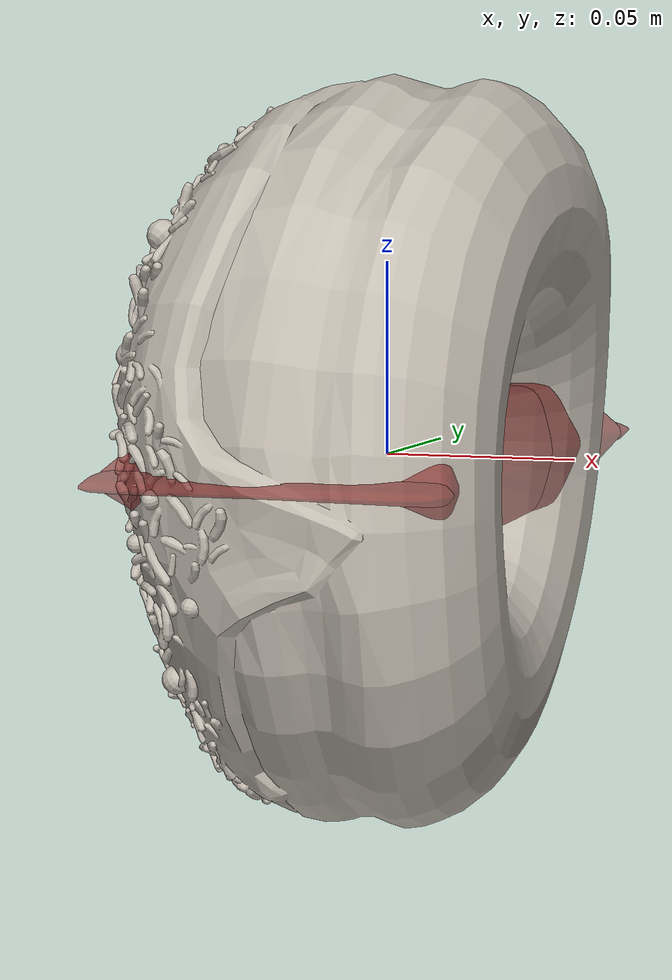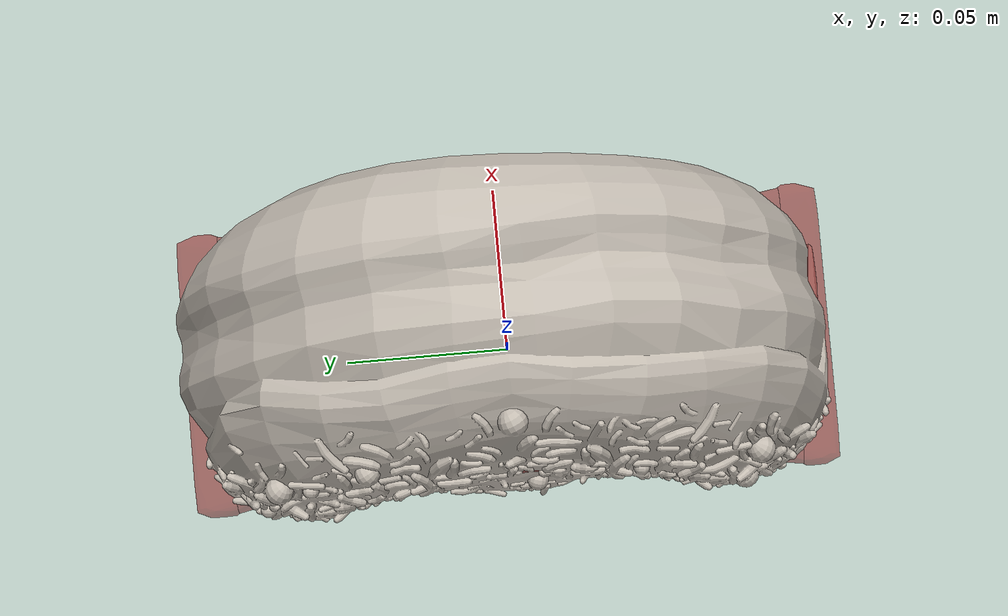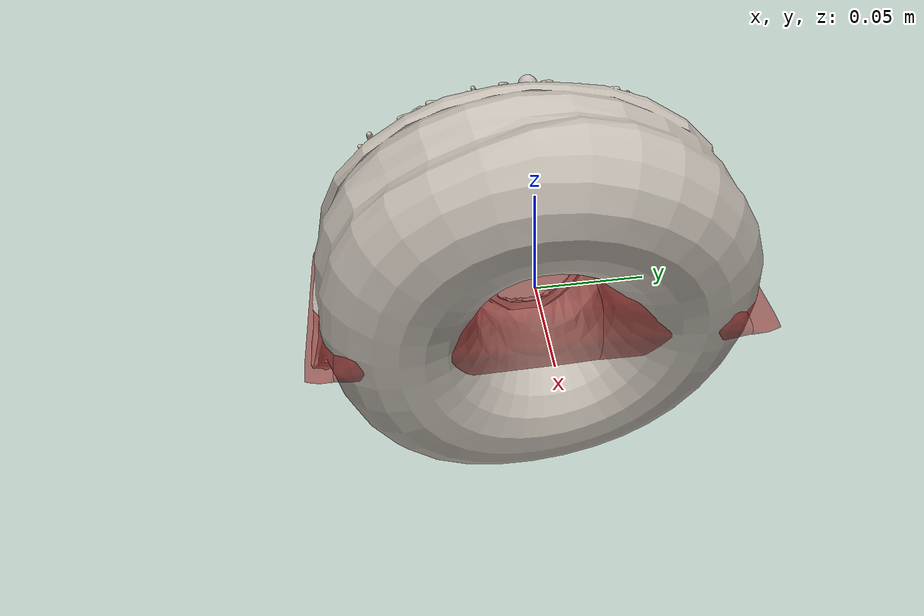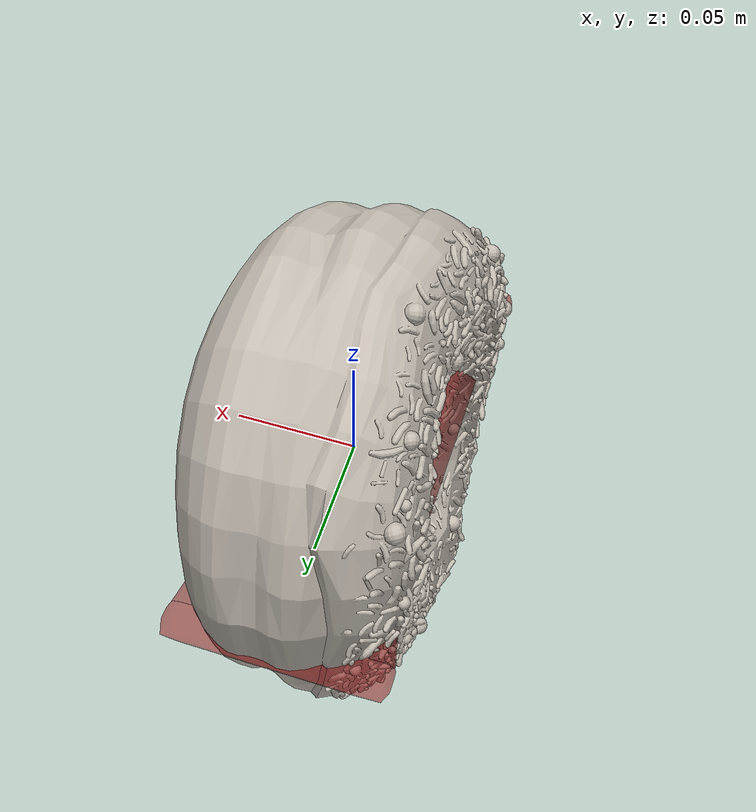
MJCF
<mujoco model="bar_4">
  <asset>
    <mesh file="visual/model_normalized_0.obj" name="model_normalized_0_vis" scale="0.2 0.2 0.2" refquat="0.49999999999999994 0.49999999999999994 0.4999999999999999 -0.49999999999999994" />
    <texture type="2d" name="image0" file="visual/image0.png" />
    <material name="kek05.002" texture="image0" specular="0.5" shininess="0.015474505000000001" />
    <mesh file="collision/collision_mesh_collision_0.obj" name="bar_collision_mesh_0" scale="0.2 0.2 0.2" refquat="0.49999999999999994 0.49999999999999994 0.4999999999999999 -0.49999999999999994" />
    <mesh file="collision/collision_mesh_collision_1.obj" name="bar_collision_mesh_1" scale="0.2 0.2 0.2" refquat="0.49999999999999994 0.49999999999999994 0.4999999999999999 -0.49999999999999994" />
    <mesh file="collision/collision_mesh_collision_2.obj" name="bar_collision_mesh_2" scale="0.2 0.2 0.2" refquat="0.49999999999999994 0.49999999999999994 0.4999999999999999 -0.49999999999999994" />
    <mesh file="collision/collision_mesh_collision_3.obj" name="bar_collision_mesh_3" scale="0.2 0.2 0.2" refquat="0.49999999999999994 0.49999999999999994 0.4999999999999999 -0.49999999999999994" />
    <mesh file="collision/collision_mesh_collision_4.obj" name="bar_collision_mesh_4" scale="0.2 0.2 0.2" refquat="0.49999999999999994 0.49999999999999994 0.4999999999999999 -0.49999999999999994" />
    <mesh file="collision/collision_mesh_collision_5.obj" name="bar_collision_mesh_5" scale="0.2 0.2 0.2" refquat="0.49999999999999994 0.49999999999999994 0.4999999999999999 -0.49999999999999994" />
    </asset>
  <default>
    <default class="region">
      <geom group="1" conaffinity="0" contype="0" rgba="0 1 0 0" />
      </default>
    <default class="collision">
      <geom group="0" rgba="0.5 0 0 0.5" density="1000.0" />
      </default>
    </default>
  <worldbody>
    <body>
      <body name="object">
        <geom solimp="0.998 0.998 0.001" solref="0.001 1" density="100" friction="0.95 0.3 0.1" type="mesh" mesh="model_normalized_0_vis" conaffinity="0" contype="0" group="1" material="kek05.002" />
        <geom class="region" name="reg_bbox" type="box" pos="-0.00010 -0.00016 0.00006" size="0.04298 0.09968 0.01648" />
        <geom mesh="bar_collision_mesh_0" type="mesh" class="collision" />
        <geom mesh="bar_collision_mesh_1" type="mesh" class="collision" />
        <geom mesh="bar_collision_mesh_2" type="mesh" class="collision" />
        <geom mesh="bar_collision_mesh_3" type="mesh" class="collision" />
        <geom mesh="bar_collision_mesh_4" type="mesh" class="collision" />
        <geom mesh="bar_collision_mesh_5" type="mesh" class="collision" />
        </body>
      </body>
    </worldbody>
  </mujoco>
